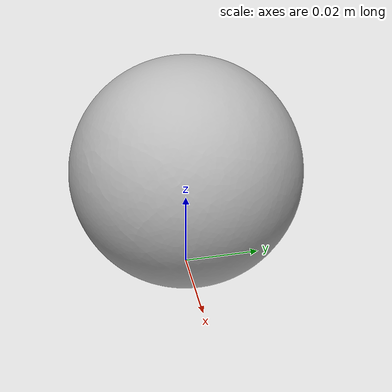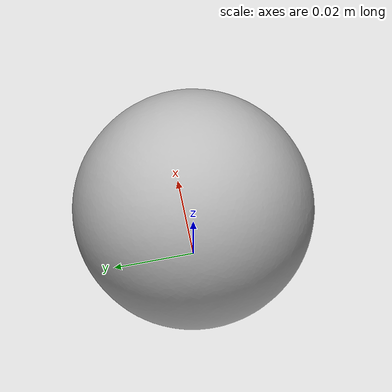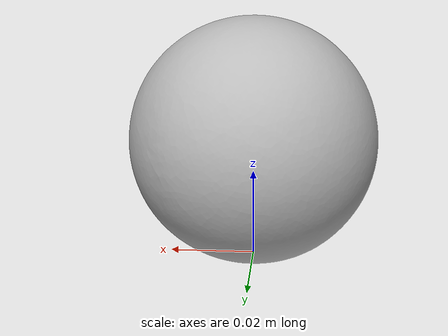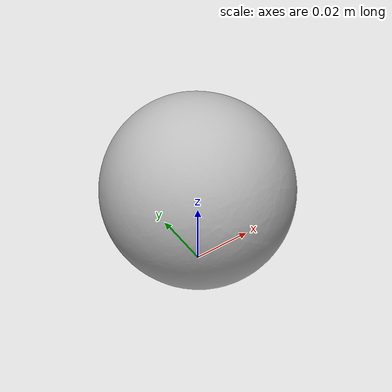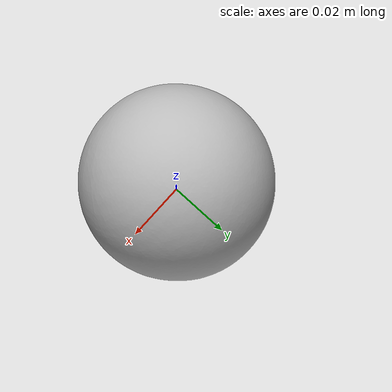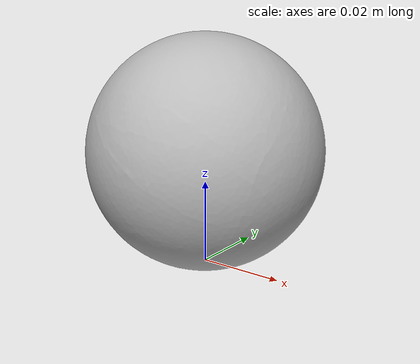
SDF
<?xml version="1.0" ?>
<sdf version='1.8'>
  <model name='ycb_057_racquetball'>
    <link name='body'>
      <inertial>
        <mass>0.041</mass>
        <pose>-1.20447684e-05 2.6500586e-05 0.0276971384 0 0 0</pose>
        <inertia>
          <ixx>1.27988245512e-05</ixx>
          <ixy>1.11180517107e-08</ixy>
          <ixz>-2.81012085612e-10</ixz>
          <iyy>1.27229343984e-05</iyy>
          <iyz>-1.99045965187e-08</iyz>
          <izz>1.28026037026e-05</izz>
        </inertia>
      </inertial>
      <visual name='ycb_057_racquetball_visual'>
        <pose>0.009059 0.122243 0.000126 0 0 0</pose>
        <geometry>
          <mesh>
            <uri>model://ycb_057_racquetball/meshes/textured.dae</uri>
          </mesh>
        </geometry>
      </visual>
      <collision name='ycb_057_racquetball_collision'>
        <pose>0.009059 0.122243 0.000126 0 0 0</pose>
        <geometry>
          <mesh>
            <uri>model://ycb_057_racquetball/meshes/nontextured.stl</uri>
          </mesh>
        </geometry>
        <max_contacts>10</max_contacts>
        <surface>
          <contact>
            <ode>
              <kp>1e15</kp>
              <kd>1e13</kd>
            </ode>
          </contact>
        </surface>
      </collision>
    </link>
  </model>
</sdf>
